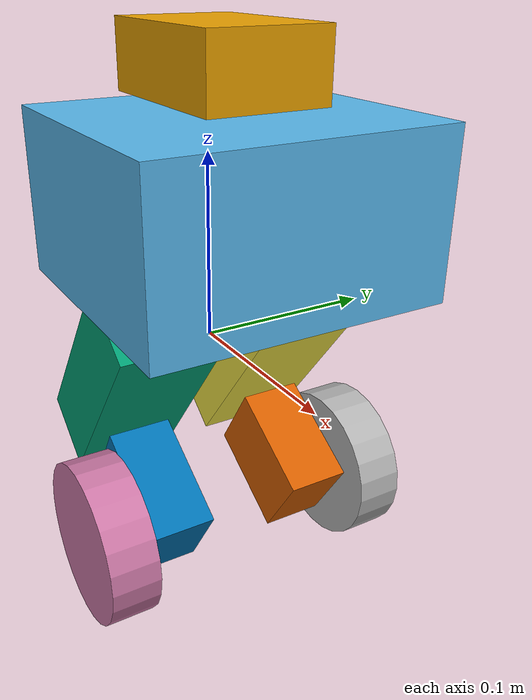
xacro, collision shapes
<?xml version="1.0" ?>
<robot name="Bbot" xmlns:xacro="http://www.ros.org/wiki/xacro">

<!-- INFO -->
<!-- Center of Mass height: 0.235 m   -->
<!-- Top leg lengh:         0.1106 m  -->
<!-- Bottom leg lengh:      0.0795 m  -->
<!-- Max alpha:             46°       -->
<!-- Max Betha:             140°      -->

<!-- Dummy Root Link -->
  <link name="base_link"/>

  <joint name="base_link_to_base" type="fixed">
    <parent link="base_link"/>
    <child link="main_base"/>
    <origin xyz="0.0 0.0 0.0" rpy="0.0 0.0 1.57" />
  </joint>

<!-- LINKS -->
    <link name="main_base">
      <inertial>
        <origin xyz="0.02228462 0.01906787 0.05671578" rpy="0.0 0 0" />
        <mass value="1.171185"/>
        <inertia ixx="0.00311204" ixy="0.0" ixz="0.0" iyy="0.00402789" iyz="0.0" izz="0.00411583" />
      </inertial>
      <visual>
        <origin xyz="0.0 0.0 0.0" rpy="1.57 0 0" />
        <geometry>
          <mesh filename="package://bbot_description/meshes/visual/base.dae"  scale="1 1 1"/>
        </geometry>
      </visual>
      <collision>
        <origin xyz="0.023030 0.017698 0.066007" rpy="0.0 0 0" />
        <geometry>
          <box size="0.174214 0.159979 0.096376" />
        </geometry>
      </collision>
    </link>

    <link name="right_top_leg">
      <inertial>
        <origin xyz="0.032 0 -0.072" />
        <mass value="0.207"/>
        <inertia ixx="0.00022502" ixy="0.0" ixz="0.0" iyy="0.00025945" iyz="0.0" izz="0.00009025" />
      </inertial>
      <visual>
        <origin xyz="-0.025 -0.021 -0.18" rpy="-1.57 -1.57 0" />
        <geometry>
          <mesh filename="package://bbot_description/meshes/visual/right_top_leg.dae"  scale="1 1 1"/>
        </geometry>
      </visual>
      <collision>
        <origin xyz="0.031 0 -0.055" rpy="0 0 0" />
        <geometry>
           <box size="0.065065 0.048933 0.138999" />
        </geometry>
      </collision>
    </link>

    <link name="left_top_leg">
      <inertial>
        <origin xyz="-0.032 0 -0.072" />
        <mass value="0.207"/>
        <inertia ixx="0.00022502" ixy="0.0" ixz="0.0" iyy="0.00025945" iyz="0.0" izz="0.00009025" />
      </inertial>
      <visual>
        <origin xyz="-0.031 -0.021 -0.19" rpy="-1.57 -1.57 0" />
        <geometry>
          <mesh filename="package://bbot_description/meshes/visual/left_top_leg.dae"  scale="1 1 1"/>
        </geometry>
      </visual>
      <collision>
        <origin xyz="-0.031 0 -0.055" rpy="0 0 0" />
        <geometry>
          <box size="0.065065 0.048933 0.138999" />
        </geometry>
      </collision>
    </link>

    <link name="right_bottom_leg">
      <inertial>
        <origin xyz="0.032 0 -0.06525" />
        <mass value="0.334"/>
        <inertia ixx="0.0003166" ixy="0.0" ixz="0.0" iyy="0.00032649" iyz="0.0" izz="0.00014826" />
      </inertial>
      <visual>
        <origin xyz="0.0275 0.027 -0.06386394" rpy="-1.57 -1.57 0" />
        <geometry>
          <mesh filename="package://bbot_description/meshes/visual/right_bottom_leg.dae"  scale="1 1 1"/>
        </geometry>
      </visual>
      <collision>
        <origin xyz="0.03013079 0 -0.065" rpy="0 0 0" />
        <geometry>
          <box size="0.040031 0.054258 0.071798" />
        </geometry>
      </collision>
    </link>

    <link name="left_bottom_leg">
      <inertial>
        <origin xyz="-0.032 0 -0.06525" />
        <mass value="0.334"/>
        <inertia ixx="0.0003166" ixy="0.0" ixz="0.0" iyy="0.00032649" iyz="0.0" izz="0.00014826" />
      </inertial>
      <visual>
        <origin xyz="-0.0292 0.027 -0.06867645" rpy="1.57 -1.57 0" />
        <geometry>
          <mesh filename="package://bbot_description/meshes/visual/left_bottom_leg.dae"  scale="1 1 1"/>
        </geometry>
      </visual>
      <collision>
        <origin xyz="-0.02825 0 -0.065" rpy="0 0 0" />
        <geometry>
          <box size="0.040031 0.054258 0.071798" />
        </geometry>
      </collision>
    </link>

    <link name="right_wheel">
      <inertial>
        <origin xyz="0 0 0" />
        <mass value="0.303077"/>
        <inertia ixx="0.0002521" ixy="0.0" ixz="0.0" iyy="0.00014179" iyz="0.0" izz="0.00014098" />
      </inertial>
      <visual>
        <origin xyz="-0.019 0.0095 0.021" rpy="0 0 1.57" />
        <geometry>
          <mesh filename="package://bbot_description/meshes/visual/right_wheel.dae"  scale="1 1 1"/>
        </geometry>
      </visual>
      <collision>
        <origin xyz="-0.002 -0.0003 0" rpy="1.57 0 1.57" />
        <geometry>
          <cylinder radius="0.05" length="0.03"/>
        </geometry>
      </collision>
    </link>

    <link name="left_wheel">
      <inertial>
        <origin xyz="0 0 0"/>
        <mass value="0.303077"/>
        <inertia ixx="0.0002521" ixy="0.0" ixz="0.0" iyy="0.00014179" iyz="0.0" izz="0.00014098" />
      </inertial>
      <visual>
        <origin xyz="-0.037 0.0 -0.021" rpy="0 0 -1.57" />
        <geometry>
          <mesh filename="package://bbot_description/meshes/visual/left_wheel.dae"  scale="1 1 1"/>
        </geometry>
      </visual>
      <collision>
        <origin xyz="0.002 -0.0003 0" rpy="1.57 0 1.57" />
        <geometry>
          <cylinder radius="0.05" length="0.03"/>
        </geometry>
      </collision>
    </link>

    <link name="lds">
      <inertial>
        <origin xyz="0 0 0" />
        <mass value="0.125"/>
        <inertia ixx="0.00005831" ixy="0.0" ixz="0.0" iyy="0.00006409" iyz="0.0" izz="0.00011932" />
      </inertial>
      <visual>
        <origin xyz="0.0 0.01 0.0" rpy="-1.57 -1.57 0" />
        <geometry>
          <mesh filename="package://bbot_description/meshes/visual/LDS.dae"  scale="1 1 1"/>
        </geometry>
      </visual>
      <collision>
        <origin xyz=" -0.02 0.0 0.025" rpy="1.57 0 0" />
        <geometry>
          <box size="0.069747 0.103263 0.038782" />
        </geometry>
      </collision>
    </link>

    <link name="RspCameraV2">
      <inertial>
        <origin xyz="0 0 0" />
        <mass value="0.003"/>
        <inertia ixx="1.4e-7" ixy="0.0" ixz="0.0" iyy="2.4e-7" iyz="0.0" izz="1.2e-7" />
      </inertial>
      <visual>
        <origin xyz="0.023 0.036 -0.15" rpy="0 0 -1.57" />
        <geometry>
          <mesh filename="package://bbot_description/meshes/visual/RspCameraV2.dae"  scale="1 1 1"/>
        </geometry>
      </visual>
      <collision>
        <origin xyz="-0.0 -0.0 0.0" rpy="0 0 0" />
        <geometry>
          <box size="0.001 0.001 0.001"/>
        </geometry>
      </collision>
    </link>

<!-- JOINTS -->
    <joint name="base2right_top_leg" type="revolute">
      <parent link="main_base"/>
      <child link="right_top_leg"/>
      <origin xyz="-0.055 0.021 0.0" rpy="0.6545 0 0" /> <!-- Previous 0.656 0.3927 -->
      <axis xyz="1 0 0" />
      <limit velocity="6.5" effort="1000" lower="-3.14" upper="3.14" />
      <dynamics damping="0.1" friction="0.0" />
    </joint>

    <joint name="base2left_top_leg" type="revolute">
      <parent link="main_base"/>
      <child link="left_top_leg"/>
      <origin xyz="0.101 0.021 0.0" rpy="0.6545 0 0" />
      <axis xyz="1 0 0" />
      <limit velocity="6.5" effort="1000" lower="-3.14" upper="3.14" />
      <dynamics damping="0.1" friction="0.0" />
    </joint>

    <joint name="right_top_leg2bottom_leg" type="revolute">
      <parent link="right_top_leg"/>
      <child link="right_bottom_leg"/>
      <origin xyz="-0.0 0.0 -0.1105" rpy="-1.665 0 0" /> <!-- Previous -1.67 -0.9547-->
      <axis xyz="1 0 0" />
      <limit velocity="6.5" effort="1000" lower="-3.14" upper="3.14" />
      <dynamics damping="0.1" friction="0.0" />
    </joint>

    <joint name="left_top_leg2bottom_leg" type="revolute">
      <parent link="left_top_leg"/>
      <child link="left_bottom_leg"/>
      <origin xyz="-0.0 0.0 -0.1105" rpy="-1.665 0 0" />
      <axis xyz="1 0 0" />
      <limit velocity="6.5" effort="1000" lower="-3.14" upper="3.14" />
      <dynamics damping="0.1" friction="0.0" />
    </joint>

    <joint name="right_bottom_leg2wheel" type="continuous">
      <parent link="right_bottom_leg"/>
      <child link="right_wheel"/>
      <origin xyz="-0.0062 0.0 -0.0795" rpy="0 0 0" />
      <axis xyz="1 0 0" />
      <limit velocity="500" effort="1000"/> <!--lower="-2.0944" upper="2.0944"-->
      <dynamics damping="0.01" friction="0.0" />
    </joint>

    <joint name="left_bottom_leg2wheel" type="continuous">
      <parent link="left_bottom_leg"/>
      <child link="left_wheel"/>
      <origin xyz="0.0062 0.0 -0.0795" rpy="0 0 0" />
      <axis xyz="1 0 0" />
      <limit velocity="500" effort="1000"/> <!--lower="-2.0944" upper="2.0944"-->
      <dynamics damping="0.01" friction="0.0" />
    </joint>

    <joint name="base2lds" type="fixed">
      <parent link="main_base"/>
      <child link="lds"/>
      <origin xyz="0.0 0.0 0.140" rpy="1.57 0 3.14" />
    </joint>

    <joint name="base2cam" type="fixed">
      <parent link="main_base"/>
      <child link="RspCameraV2"/>
      <origin xyz="0.023 -0.03 0.036" rpy="1.57 3.14 0" />
    </joint>

<!-- TRANSMISSION -->
  <gazebo>
    <plugin filename="libgazebo_ros_control.so" name="gazebo_ros_control">
      <robotNamespace>/bbot</robotNamespace>
    </plugin>
  </gazebo>

  <transmission name="trans_base2right_top_leg">
      <type>transmission_interface/SimpleTransmission</type>
      <joint name="base2right_top_leg">
          <hardwareInterface>hardware_interface/PositionJointInterface</hardwareInterface>
      </joint>
      <actuator name="motor_base2right_top_leg">
        <hardwareInterface>hardware_interface/PositionJointInterface</hardwareInterface>
        <mechanicalReduction>1</mechanicalReduction>
      </actuator>
  </transmission>

  <transmission name="trans_base2left_top_leg">
      <type>transmission_interface/SimpleTransmission</type>
      <joint name="base2left_top_leg">
          <hardwareInterface>hardware_interface/PositionJointInterface</hardwareInterface>
      </joint>
      <actuator name="motor_base2left_top_leg">
        <hardwareInterface>hardware_interface/PositionJointInterface</hardwareInterface>
        <mechanicalReduction>1</mechanicalReduction>
      </actuator>
  </transmission>

  <transmission name="trans_right_top_leg2bottom_leg">
      <type>transmission_interface/SimpleTransmission</type>
      <joint name="right_top_leg2bottom_leg">
          <hardwareInterface>hardware_interface/PositionJointInterface</hardwareInterface>
      </joint>
      <actuator name="motor_right_top_leg2bottom_leg">
        <hardwareInterface>hardware_interface/PositionJointInterface</hardwareInterface>
        <mechanicalReduction>1</mechanicalReduction>
      </actuator>
  </transmission>

  <transmission name="trans_left_top_leg2bottom_leg">
      <type>transmission_interface/SimpleTransmission</type>
      <joint name="left_top_leg2bottom_leg">
          <hardwareInterface>hardware_interface/PositionJointInterface</hardwareInterface>
      </joint>
      <actuator name="motor_left_top_leg2bottom_leg">
        <hardwareInterface>hardware_interface/PositionJointInterface</hardwareInterface>
        <mechanicalReduction>1</mechanicalReduction>
      </actuator>
  </transmission>

  <transmission name="trans_right_bottom_leg2wheel">
      <type>transmission_interface/SimpleTransmission</type>
      <joint name="right_bottom_leg2wheel">
          <hardwareInterface>hardware_interface/EffortJointInterface</hardwareInterface>
      </joint>
      <actuator name="motor_right_bottom_leg2wheel">
        <hardwareInterface>hardware_interface/EffortJointInterface</hardwareInterface>
        <mechanicalReduction>1</mechanicalReduction>
      </actuator>
  </transmission>

  <transmission name="trans_left_bottom_leg2wheel">
      <type>transmission_interface/SimpleTransmission</type>
      <joint name="left_bottom_leg2wheel">
          <hardwareInterface>hardware_interface/EffortJointInterface</hardwareInterface>
      </joint>
      <actuator name="motor_left_bottom_leg2wheel">
        <hardwareInterface>hardware_interface/EffortJointInterface</hardwareInterface>
        <mechanicalReduction>1</mechanicalReduction>
      </actuator>
  </transmission>

<!-- PARAMETERS -->
  <gazebo reference="main_base">
      <mu1>0.5</mu1>
      <mu2>0.5</mu2>
  </gazebo>
  <gazebo reference="right_top_leg">
      <mu1>0.5</mu1>
      <mu2>0.5</mu2>
  </gazebo>
  <gazebo reference="left_top_leg">
      <mu1>0.5</mu1>
      <mu2>0.5</mu2>
  </gazebo>
  <gazebo reference="right_bottom_leg">
      <mu1>0.5</mu1>
      <mu2>0.5</mu2>
  </gazebo>
  <gazebo reference="left_bottom_leg">
      <mu1>0.5</mu1>
      <mu2>0.5</mu2>
  </gazebo>
  <gazebo reference="right_wheel">
      <mu1>0.8</mu1>
      <mu2>0.8</mu2>
  </gazebo>
  <gazebo reference="left_wheel">
      <mu1>0.8</mu1>
      <mu2>0.8</mu2>
  </gazebo>
  <gazebo reference="lds">
      <mu1>0.5</mu1>
      <mu2>0.5</mu2>
  </gazebo>
  <gazebo reference="RspCameraV2">
      <mu1>0.5</mu1>
      <mu2>0.5</mu2>
  </gazebo>

<!-- SENSOR -->
  <!-- Camera -->
    <link name="camera_frame_gazebo"/>
    <joint name="camera_joint" type="fixed">
        <parent link="RspCameraV2" />
        <child link="camera_frame_gazebo" />
        <origin xyz="0 0 0" rpy="1.57 -1.57 0" />
    </joint>
    <gazebo reference="camera_frame_gazebo">
      <sensor type="camera" name="raspberry_cam">
            <visualize>0</visualize>
            <update_rate>30.0</update_rate>
            <camera name="raspberry_cam">
              <horizontal_fov>1.0472</horizontal_fov>
              <image>
                <width>1920</width>
                <height>1080</height>
                <format>R8G8B8</format>
              </image>
              <clip>
                <near>0.02</near>
                <far>300</far>
              </clip>
              <noise>
                <type>gaussian</type>
                <mean>0.0</mean>
                <stddev>0.00</stddev>
              </noise>
            </camera>
            <plugin name="camera_controller" filename="libgazebo_ros_camera.so">
              <alwaysOn>true</alwaysOn>
              <updateRate>0.0</updateRate>
              <cameraName>raspberry_cam</cameraName>
              <imageTopicName>image_raw</imageTopicName>
              <cameraInfoTopicName>camera_info</cameraInfoTopicName>
              <frameName>camera_link</frameName>
              <hackBaseline>0.0</hackBaseline>
              <distortionK1>0.0</distortionK1>
              <distortionK2>0.0</distortionK2>
              <distortionK3>0.0</distortionK3>
              <distortionT1>0.0</distortionT1>
              <distortionT2>0.0</distortionT2>
            </plugin>
          </sensor>
    </gazebo>
    <!-- Optical frame -->

  <!-- LiDAR -->
    <link name="lds_frame_gazebo"/>
    <joint name="lds_joint" type="fixed">
        <parent link="lds" />
        <child link="lds_frame_gazebo" />
        <origin xyz="-0.023 -0.007 0" rpy="1.57 1.57 3.14" />
    </joint>
    <gazebo reference="lds_frame_gazebo">
      <sensor type="gpu_ray" name="lds_sensor">
        <pose>0 0 0 0 0 0</pose>
        <visualize>false</visualize>
        <update_rate>40</update_rate>
        <ray>
          <scan>
            <horizontal>
              <samples>720</samples>
              <resolution>1</resolution>
              <min_angle>-3.14</min_angle>
              <max_angle>3.14</max_angle>
            </horizontal>
          </scan>
          <range>
            <min>0.12</min>
            <max>1.2</max>
            <resolution>0.01</resolution>
          </range>
          <noise>
            <type>gaussian</type>
            <mean>0.0</mean>
            <stddev>0.01</stddev>
          </noise>
        </ray>
        <plugin name="gazebo_ros_head_hokuyo_controller" filename="libgazebo_ros_gpu_laser.so">
          <topicName>/bbot/laser/scan</topicName>
          <frameName>lds_frame_gazebo</frameName>
        </plugin>
      </sensor>
    </gazebo>

  <!-- IMU -->
    <link name="imu_frame_gazebo"/>
    <joint name="imu_joint" type="fixed">
        <parent link="main_base" />
        <child link="imu_frame_gazebo" />
        <origin xyz="0.02075 0.01765 0.0326" rpy="0 0 0" />
    </joint>
    <gazebo reference="imu_frame_gazebo">
      <gravity>true</gravity>
      <sensor name="imu_sensor" type="imu">
        <always_on>true</always_on>
        <update_rate>100</update_rate>
        <visualize>true</visualize>
        <pose>0 0 0 0 0 0</pose>
        <topic>__default_topic__</topic>
        <plugin filename="libgazebo_ros_imu_sensor.so" name="imu_plugin">
          <topicName>/bbot/imu</topicName>
          <bodyName>imu_frame_gazebo</bodyName>
          <updateRateHZ>100.0</updateRateHZ>
          <gaussianNoise>0.0</gaussianNoise>
          <xyzOffset>0 0 0</xyzOffset>
          <rpyOffset>0 0 0</rpyOffset>
          <frameName>imu_frame_gazebo</frameName>
          <initialOrientationAsReference>false</initialOrientationAsReference>
        </plugin>
      </sensor>
    </gazebo>

</robot>
